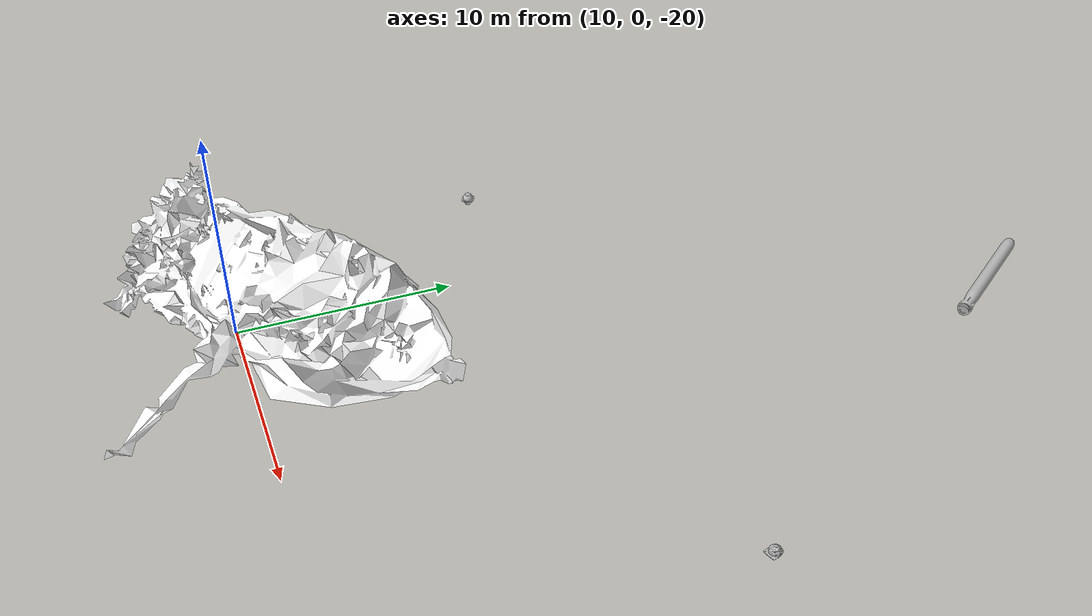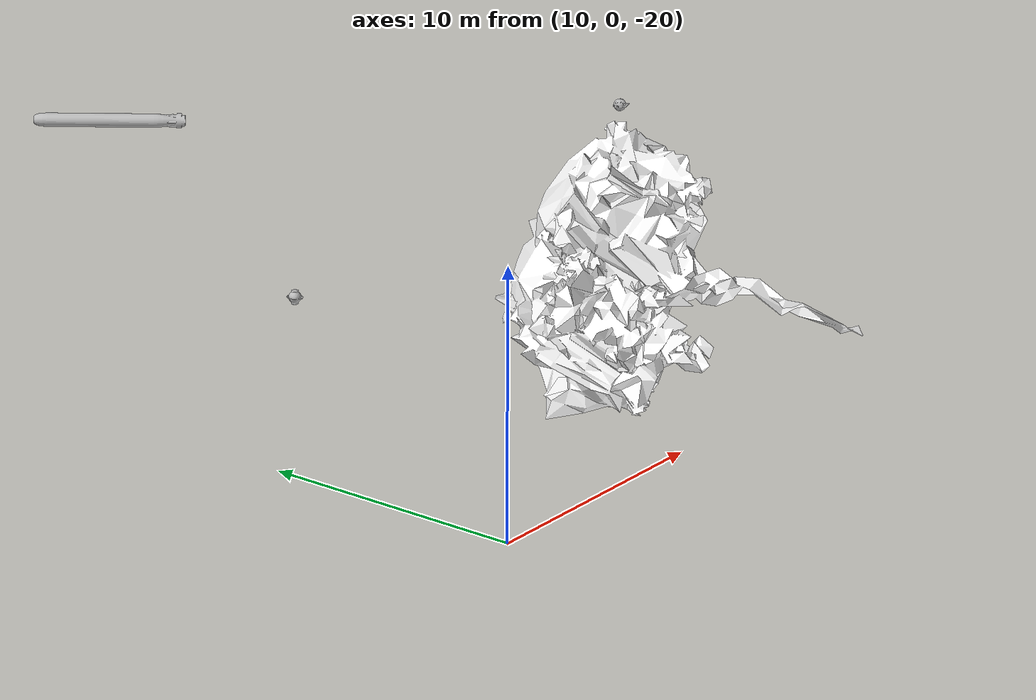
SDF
<sdf version="1.9">
 <world name="gh05_041005">
  <plugin filename="gz-sim-physics-system" name="gz::sim::systems::Physics"/>
  <plugin filename="gz-sim-user-commands-system" name="gz::sim::systems::UserCommands"/>
  <plugin filename="gz-sim-scene-broadcaster-system" name="gz::sim::systems::SceneBroadcaster"/>
  <plugin filename="gz-sim-sensors-system" name="gz::sim::systems::Sensors">
   <render_engine>ogre2</render_engine>
  </plugin>
  <plugin filename="multibeam_sonar_system" name="custom::MultibeamSonarSystem"/>
  <physics name="1ms" type="ignored">
   <max_step_size>0.001</max_step_size>
   <real_time_factor>1.0</real_time_factor>
  </physics>
  <scene>
   <ambient>0.25 0.30 0.35 1.0</ambient>
   <background>0.02 0.05 0.09 1.0</background>
   <shadows>0</shadows>
  </scene>
  <light type="directional" name="sun">
   <cast_shadows>false</cast_shadows>
   <pose>0 0 30 0 0 0</pose>
   <diffuse>0.9 0.95 1.0 1</diffuse>
   <specular>0.1 0.1 0.1 1</specular>
   <direction>-0.2 -0.1 -1</direction>
  </light>
  <include>
   <name>objs01_sunken_ship_distorted</name>
   <uri>model://sunken_ship_distorted</uri>
   <pose>17.6655 1.8676 -15.5805 0 0 0.5443</pose>
   <static>true</static>
   <plugin filename="gz-sim-label-system" name="gz::sim::systems::Label"><label>1</label></plugin>
  </include>
  <include>
   <name>objs02_hardhat_ribbed</name>
   <uri>model://hardhat_ribbed</uri>
   <pose>34.7958 13.6769 -14.1836 0 0 0.3320</pose>
   <static>true</static>
   <plugin filename="gz-sim-label-system" name="gz::sim::systems::Label"><label>9</label></plugin>
  </include>
  <include>
   <name>objs03_torpedo_mk48</name>
   <uri>model://torpedo_mk48</uri>
   <pose>23.4912 29.5923 -15.1280 0 0 2.2056</pose>
   <static>true</static>
   <plugin filename="gz-sim-label-system" name="gz::sim::systems::Label"><label>8</label></plugin>
  </include>
  <include>
   <name>objs04_hardhat_standard</name>
   <uri>model://hardhat_standard</uri>
   <pose>11.7299 10.6431 -14.1769 0 0 0.3092</pose>
   <static>true</static>
   <plugin filename="gz-sim-label-system" name="gz::sim::systems::Label"><label>9</label></plugin>
  </include>
 </world>
</sdf>

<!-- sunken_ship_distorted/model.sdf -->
<sdf version="1.6">
    <model name="sunkenship_distorted">
        <static>true</static>
        <link name="base_link">
            <collision name="collision">
                <pose>0 0 0 0 0 0</pose>
                <geometry>
                    <mesh>
                        <uri>model://sunken_ship_distorted/meshes/sunkenship_distort.dae</uri>
                        <scale>1.0 1.0 1.0</scale>
                    </mesh>
                </geometry>
            </collision>
            <visual name="SunkenShip_distorted_visual">
                <geometry>
                    <mesh>
                        <uri>model://sunken_ship_distorted/meshes/sunkenship_distort.dae</uri>
                        <submesh>
                            <name>SunkenShip</name>
                            <center>false</center>
                        </submesh>
                    </mesh>
                </geometry>
                <material>
                    <diffuse>1.0 1.0 1.0</diffuse>
                    <specular>1.0 1.0 1.0</specular>
                    <pbr>
                        <metal>
                            <albedo_map>https://fuel.gazebosim.org/1.0/cole/models/sunken ship/2/files/materials/textures/SunkenShip_Albedo.png</albedo_map>
                            <normal_map>https://fuel.gazebosim.org/1.0/cole/models/sunken ship/2/files/materials/textures/SunkenShip_Normal.png</normal_map>
                            <metalness_map>https://fuel.gazebosim.org/1.0/cole/models/sunken ship/2/files/materials/textures/SunkenShip_Metalness.png</metalness_map>
                            <roughness_map>https://fuel.gazebosim.org/1.0/cole/models/sunken ship/2/files/materials/textures/SunkenShip_Roughness.png</roughness_map>
                        </metal>
                    </pbr>
                    <!-- fallback to script if no PBR support-->
                    <script>
                        <uri>https://fuel.gazebosim.org/1.0/cole/models/sunken ship/2/files/materials/scripts/</uri>
                        <uri>https://fuel.gazebosim.org/1.0/cole/models/sunken ship/2/files/materials/textures/</uri>
                        <name>UrbanTile/SunkenShip</name>
                    </script>
                </material>
            </visual>
        </link>
    </model>
</sdf>

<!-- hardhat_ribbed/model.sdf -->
<sdf version="1.6">
  <model name="hardhat_ribbed">
    <static>false</static>
    <link name="base_link">
      <inertial>
        <mass>17.7</mass>
        <inertia>
          <ixx>0.55</ixx>
          <ixy>0.0</ixy>
          <ixz>0.0</ixz>
          <iyy>0.55</iyy>
          <iyz>0.0</iyz>
          <izz>0.55</izz>
        </inertia>
      </inertial>
      <visual name="visual">
        <geometry>
           <mesh>
            <uri>file://hardhat_ribbed/meshes/hardhat_ribbed.dae</uri>
          </mesh>
        </geometry>
      </visual>
      <collision name="collision">
        <pose>0 0 0 0 0 0</pose>
        <geometry>
          <mesh>
	    <uri>file://hardhat_ribbed/meshes/hardhat_ribbed_collision.dae</uri>
          </mesh>
        </geometry>
      </collision>
    </link>
  </model>
</sdf>

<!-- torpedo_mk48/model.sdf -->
<sdf version="1.6">
  <model name="torpedo_mk48">
    <static>false</static>
    <link name="base_link">
      <inertial>
        <!-- See python script in model folder for calcs -->
        <mass>278</mass>
        <inertia>
          <ixx>9.8</ixx>
          <ixy>0.0</ixy>
          <ixz>0.0</ixz>
          <iyy>785</iyy>
          <iyz>0.0</iyz>
          <izz>785</izz>
        </inertia>
      </inertial>
      <visual name="visual">
        <geometry>
           <mesh>
            <uri>file://torpedo_mk48/meshes/torpedo_mk48.dae</uri>
          </mesh>
        </geometry>
      </visual>
      <collision name="collision">
        <pose>0 0 0 0 0 0</pose>
        <geometry>
          <mesh>
            <uri>file://torpedo_mk48/meshes/torpedo_mk48_collision.dae</uri>
          </mesh>
        </geometry>
      </collision>
    </link>
  </model>
</sdf>

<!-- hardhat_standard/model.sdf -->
<sdf version="1.6">
  <model name="hardhat_standard">
    <static>false</static>
    <link name="base_link">
      <inertial>
        <mass>17.7</mass>
        <inertia>
          <ixx>0.55</ixx>
          <ixy>0.0</ixy>
          <ixz>0.0</ixz>
          <iyy>0.55</iyy>
          <iyz>0.0</iyz>
          <izz>0.55</izz>
        </inertia>
      </inertial>
      <visual name="visual">
        <geometry>
           <mesh>
            <uri>file://hardhat_standard/meshes/hardhat_standard.dae</uri>
          </mesh>
        </geometry>
      </visual>
      <collision name="collision">
        <pose>0 0 0 0 0 0</pose>
        <geometry>
          <mesh>
	    <uri>file://hardhat_standard/meshes/hardhat_standard_collision.dae</uri>
          </mesh>
        </geometry>
      </collision>
    </link>
  </model>
</sdf>
